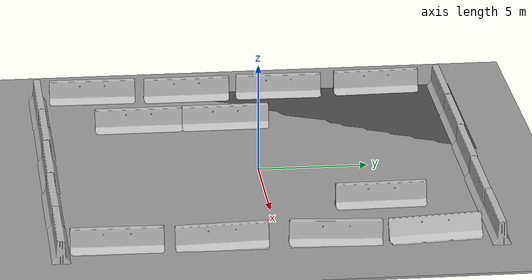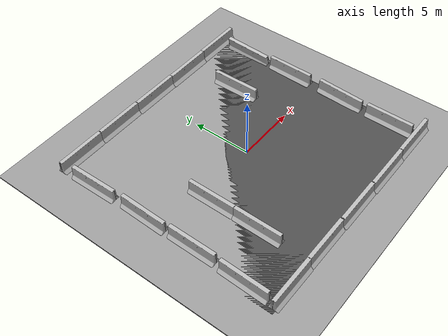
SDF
<sdf version="1.7">
 <world name="default">
  <light name="sun" type="directional">
   <pose>0 0 10 0 -0 0</pose>
   <diffuse>0.8 0.8 0.8 1</diffuse>
   <specular>0.2 0.2 0.2 1</specular>
   <attenuation>
    <range>1000</range>
    <constant>0.9</constant>
    <linear>0.01</linear>
    <quadratic>0.001</quadratic>
   </attenuation>
   <direction>-0.5 0.1 -0.9</direction>
   <spot><inner_angle>0</inner_angle><outer_angle>0</outer_angle><falloff>0</falloff></spot>
  </light>
  <model name="ground_plane">
   <static>1</static>
   <link name="link">
    <collision name="collision">
     <geometry><plane><normal>0 0 1</normal><size>100 100</size></plane></geometry>
     <surface>
      <contact><collide_bitmask>65535</collide_bitmask></contact>
      <friction><ode><mu>100</mu><mu2>50</mu2></ode></friction>
     </surface>
    </collision>
    <visual name="visual">
     <cast_shadows>0</cast_shadows>
     <geometry><plane><normal>0 0 1</normal><size>100 100</size></plane></geometry>
     <material>
      <script><uri>file://media/materials/scripts/gazebo.material</uri><name>Gazebo/Grey</name></script>
     </material>
    </visual>
   </link>
  </model>
  <gravity>0 0 -9.8</gravity>
  <magnetic_field>6e-06 2.3e-05 -4.2e-05</magnetic_field>
  <atmosphere type="adiabatic"/>
  <physics type="ode">
   <max_step_size>0.001</max_step_size>
   <real_time_factor>1</real_time_factor>
   <real_time_update_rate>1000</real_time_update_rate>
  </physics>
  <scene><ambient>0.4 0.4 0.4 1</ambient><background>0.7 0.7 0.7 1</background><shadows>1</shadows></scene>
  <spherical_coordinates>
   <surface_model>EARTH_WGS84</surface_model>
   <latitude_deg>0</latitude_deg>
   <longitude_deg>0</longitude_deg>
   <elevation>0</elevation>
   <heading_deg>0</heading_deg>
  </spherical_coordinates>
  <model name="ground_plane_0">
   <static>1</static>
   <link name="link">
    <collision name="collision">
     <geometry><plane><normal>0 0 1</normal><size>100 100</size></plane></geometry>
     <surface>
      <contact><collide_bitmask>65535</collide_bitmask></contact>
      <friction><ode><mu>100</mu><mu2>50</mu2></ode></friction>
     </surface>
    </collision>
    <visual name="visual">
     <cast_shadows>0</cast_shadows>
     <geometry><plane><normal>0 0 1</normal><size>100 100</size></plane></geometry>
     <material>
      <script><uri>file://media/materials/scripts/gazebo.material</uri><name>Gazebo/Grey</name></script>
     </material>
    </visual>
   </link>
   <pose>-2.03135 -1.11206 0 0 -0 0</pose>
  </model>
  <model name="jersey_barrier">
   <static>1</static>
   <link name="link">
    <visual name="visual">
     <geometry><mesh><uri>model://jersey_barrier/meshes/jersey_barrier.dae</uri></mesh></geometry>
    </visual>
    <collision name="upright">
     <pose>0 0 0.5715 0 -0 0</pose>
     <geometry><box><size>4.06542 0.3063 1.143</size></box></geometry>
    </collision>
    <collision name="base">
     <pose>0 0 0.032258 0 -0 0</pose>
     <geometry><box><size>4.06542 0.8107 0.064516</size></box></geometry>
    </collision>
    <collision name="base2">
     <pose>0 0 0.1 0 -0 0</pose>
     <geometry><box><size>4.06542 0.65 0.1</size></box></geometry>
    </collision>
    <collision name="base3">
     <pose>0 0 0.2 0 -0 0</pose>
     <geometry><box><size>4.06542 0.5 0.1</size></box></geometry>
    </collision>
    <collision name="left-angle">
     <pose>0 -0.224 0.2401 0.9 -0 0</pose>
     <geometry><box><size>4.06542 0.5 0.064516</size></box></geometry>
    </collision>
    <collision name="right-angle">
     <pose>0 0.224 0.2401 -0.9 0 0</pose>
     <geometry><box><size>4.06542 0.5 0.064516</size></box></geometry>
    </collision>
   </link>
   <pose>-5.45633 -5.03881 0 0 -0 1.56743</pose>
  </model>
  <model name="jersey_barrier_0">
   <static>1</static>
   <link name="link">
    <visual name="visual">
     <geometry><mesh><uri>model://jersey_barrier/meshes/jersey_barrier.dae</uri></mesh></geometry>
    </visual>
    <collision name="upright">
     <pose>0 0 0.5715 0 -0 0</pose>
     <geometry><box><size>4.06542 0.3063 1.143</size></box></geometry>
    </collision>
    <collision name="base">
     <pose>0 0 0.032258 0 -0 0</pose>
     <geometry><box><size>4.06542 0.8107 0.064516</size></box></geometry>
    </collision>
    <collision name="base2">
     <pose>0 0 0.1 0 -0 0</pose>
     <geometry><box><size>4.06542 0.65 0.1</size></box></geometry>
    </collision>
    <collision name="base3">
     <pose>0 0 0.2 0 -0 0</pose>
     <geometry><box><size>4.06542 0.5 0.1</size></box></geometry>
    </collision>
    <collision name="left-angle">
     <pose>0 -0.224 0.2401 0.9 -0 0</pose>
     <geometry><box><size>4.06542 0.5 0.064516</size></box></geometry>
    </collision>
    <collision name="right-angle">
     <pose>0 0.224 0.2401 -0.9 0 0</pose>
     <geometry><box><size>4.06542 0.5 0.064516</size></box></geometry>
    </collision>
   </link>
   <pose>-5.45071 -0.981356 0 0 -0 1.57305</pose>
  </model>
  <model name="jersey_barrier_1">
   <static>1</static>
   <link name="link">
    <visual name="visual">
     <geometry><mesh><uri>model://jersey_barrier/meshes/jersey_barrier.dae</uri></mesh></geometry>
    </visual>
    <collision name="upright">
     <pose>0 0 0.5715 0 -0 0</pose>
     <geometry><box><size>4.06542 0.3063 1.143</size></box></geometry>
    </collision>
    <collision name="base">
     <pose>0 0 0.032258 0 -0 0</pose>
     <geometry><box><size>4.06542 0.8107 0.064516</size></box></geometry>
    </collision>
    <collision name="base2">
     <pose>0 0 0.1 0 -0 0</pose>
     <geometry><box><size>4.06542 0.65 0.1</size></box></geometry>
    </collision>
    <collision name="base3">
     <pose>0 0 0.2 0 -0 0</pose>
     <geometry><box><size>4.06542 0.5 0.1</size></box></geometry>
    </collision>
    <collision name="left-angle">
     <pose>0 -0.224 0.2401 0.9 -0 0</pose>
     <geometry><box><size>4.06542 0.5 0.064516</size></box></geometry>
    </collision>
    <collision name="right-angle">
     <pose>0 0.224 0.2401 -0.9 0 0</pose>
     <geometry><box><size>4.06542 0.5 0.064516</size></box></geometry>
    </collision>
   </link>
   <pose>5.06129 4.93659 0 0 0 -1.55743</pose>
  </model>
  <model name="asphalt_plane">
   <static>1</static>
   <link name="link">
    <collision name="collision"><geometry><box><size>20 20 0.1</size></box></geometry></collision>
    <visual name="visual">
     <cast_shadows>0</cast_shadows>
     <geometry><box><size>20 20 0.1</size></box></geometry>
     <material>
      <script>
       <uri>model://asphalt_plane/materials/scripts</uri>
       <uri>model://asphalt_plane/materials/textures</uri>
       <name>vrc/asphalt</name>
      </script>
     </material>
    </visual>
   </link>
   <pose>-0.201738 0.289887 0 0 -0 0</pose>
  </model>
  <model name="jersey_barrier_2">
   <static>1</static>
   <link name="link">
    <visual name="visual">
     <geometry><mesh><uri>model://jersey_barrier/meshes/jersey_barrier.dae</uri></mesh></geometry>
    </visual>
    <collision name="upright">
     <pose>0 0 0.5715 0 -0 0</pose>
     <geometry><box><size>4.06542 0.3063 1.143</size></box></geometry>
    </collision>
    <collision name="base">
     <pose>0 0 0.032258 0 -0 0</pose>
     <geometry><box><size>4.06542 0.8107 0.064516</size></box></geometry>
    </collision>
    <collision name="base2">
     <pose>0 0 0.1 0 -0 0</pose>
     <geometry><box><size>4.06542 0.65 0.1</size></box></geometry>
    </collision>
    <collision name="base3">
     <pose>0 0 0.2 0 -0 0</pose>
     <geometry><box><size>4.06542 0.5 0.1</size></box></geometry>
    </collision>
    <collision name="left-angle">
     <pose>0 -0.224 0.2401 0.9 -0 0</pose>
     <geometry><box><size>4.06542 0.5 0.064516</size></box></geometry>
    </collision>
    <collision name="right-angle">
     <pose>0 0.224 0.2401 -0.9 0 0</pose>
     <geometry><box><size>4.06542 0.5 0.064516</size></box></geometry>
    </collision>
   </link>
   <pose>-7.91902 9.63171 0 0 -0 0</pose>
  </model>
  <model name="jersey_barrier_3">
   <static>1</static>
   <link name="link">
    <visual name="visual">
     <geometry><mesh><uri>model://jersey_barrier/meshes/jersey_barrier.dae</uri></mesh></geometry>
    </visual>
    <collision name="upright">
     <pose>0 0 0.5715 0 -0 0</pose>
     <geometry><box><size>4.06542 0.3063 1.143</size></box></geometry>
    </collision>
    <collision name="base">
     <pose>0 0 0.032258 0 -0 0</pose>
     <geometry><box><size>4.06542 0.8107 0.064516</size></box></geometry>
    </collision>
    <collision name="base2">
     <pose>0 0 0.1 0 -0 0</pose>
     <geometry><box><size>4.06542 0.65 0.1</size></box></geometry>
    </collision>
    <collision name="base3">
     <pose>0 0 0.2 0 -0 0</pose>
     <geometry><box><size>4.06542 0.5 0.1</size></box></geometry>
    </collision>
    <collision name="left-angle">
     <pose>0 -0.224 0.2401 0.9 -0 0</pose>
     <geometry><box><size>4.06542 0.5 0.064516</size></box></geometry>
    </collision>
    <collision name="right-angle">
     <pose>0 0.224 0.2401 -0.9 0 0</pose>
     <geometry><box><size>4.06542 0.5 0.064516</size></box></geometry>
    </collision>
   </link>
   <pose>-3.83808 9.62123 0 0 -0 0</pose>
  </model>
  <model name="jersey_barrier_4">
   <static>1</static>
   <link name="link">
    <visual name="visual">
     <geometry><mesh><uri>model://jersey_barrier/meshes/jersey_barrier.dae</uri></mesh></geometry>
    </visual>
    <collision name="upright">
     <pose>0 0 0.5715 0 -0 0</pose>
     <geometry><box><size>4.06542 0.3063 1.143</size></box></geometry>
    </collision>
    <collision name="base">
     <pose>0 0 0.032258 0 -0 0</pose>
     <geometry><box><size>4.06542 0.8107 0.064516</size></box></geometry>
    </collision>
    <collision name="base2">
     <pose>0 0 0.1 0 -0 0</pose>
     <geometry><box><size>4.06542 0.65 0.1</size></box></geometry>
    </collision>
    <collision name="base3">
     <pose>0 0 0.2 0 -0 0</pose>
     <geometry><box><size>4.06542 0.5 0.1</size></box></geometry>
    </collision>
    <collision name="left-angle">
     <pose>0 -0.224 0.2401 0.9 -0 0</pose>
     <geometry><box><size>4.06542 0.5 0.064516</size></box></geometry>
    </collision>
    <collision name="right-angle">
     <pose>0 0.224 0.2401 -0.9 0 0</pose>
     <geometry><box><size>4.06542 0.5 0.064516</size></box></geometry>
    </collision>
   </link>
   <pose>0.242921 9.57793 0 0 -0 0</pose>
  </model>
  <model name="jersey_barrier_5">
   <static>1</static>
   <link name="link">
    <visual name="visual">
     <geometry><mesh><uri>model://jersey_barrier/meshes/jersey_barrier.dae</uri></mesh></geometry>
    </visual>
    <collision name="upright">
     <pose>0 0 0.5715 0 -0 0</pose>
     <geometry><box><size>4.06542 0.3063 1.143</size></box></geometry>
    </collision>
    <collision name="base">
     <pose>0 0 0.032258 0 -0 0</pose>
     <geometry><box><size>4.06542 0.8107 0.064516</size></box></geometry>
    </collision>
    <collision name="base2">
     <pose>0 0 0.1 0 -0 0</pose>
     <geometry><box><size>4.06542 0.65 0.1</size></box></geometry>
    </collision>
    <collision name="base3">
     <pose>0 0 0.2 0 -0 0</pose>
     <geometry><box><size>4.06542 0.5 0.1</size></box></geometry>
    </collision>
    <collision name="left-angle">
     <pose>0 -0.224 0.2401 0.9 -0 0</pose>
     <geometry><box><size>4.06542 0.5 0.064516</size></box></geometry>
    </collision>
    <collision name="right-angle">
     <pose>0 0.224 0.2401 -0.9 0 0</pose>
     <geometry><box><size>4.06542 0.5 0.064516</size></box></geometry>
    </collision>
   </link>
   <pose>4.29104 9.53452 0 0 -0 0</pose>
  </model>
  <model name="jersey_barrier_6">
   <static>1</static>
   <link name="link">
    <visual name="visual">
     <geometry><mesh><uri>model://jersey_barrier/meshes/jersey_barrier.dae</uri></mesh></geometry>
    </visual>
    <collision name="upright">
     <pose>0 0 0.5715 0 -0 0</pose>
     <geometry><box><size>4.06542 0.3063 1.143</size></box></geometry>
    </collision>
    <collision name="base">
     <pose>0 0 0.032258 0 -0 0</pose>
     <geometry><box><size>4.06542 0.8107 0.064516</size></box></geometry>
    </collision>
    <collision name="base2">
     <pose>0 0 0.1 0 -0 0</pose>
     <geometry><box><size>4.06542 0.65 0.1</size></box></geometry>
    </collision>
    <collision name="base3">
     <pose>0 0 0.2 0 -0 0</pose>
     <geometry><box><size>4.06542 0.5 0.1</size></box></geometry>
    </collision>
    <collision name="left-angle">
     <pose>0 -0.224 0.2401 0.9 -0 0</pose>
     <geometry><box><size>4.06542 0.5 0.064516</size></box></geometry>
    </collision>
    <collision name="right-angle">
     <pose>0 0.224 0.2401 -0.9 0 0</pose>
     <geometry><box><size>4.06542 0.5 0.064516</size></box></geometry>
    </collision>
   </link>
   <pose>8.27347 9.55728 0 0 -0 0</pose>
  </model>
  <model name="jersey_barrier_7">
   <static>1</static>
   <link name="link">
    <visual name="visual">
     <geometry><mesh><uri>model://jersey_barrier/meshes/jersey_barrier.dae</uri></mesh></geometry>
    </visual>
    <collision name="upright">
     <pose>0 0 0.5715 0 -0 0</pose>
     <geometry><box><size>4.06542 0.3063 1.143</size></box></geometry>
    </collision>
    <collision name="base">
     <pose>0 0 0.032258 0 -0 0</pose>
     <geometry><box><size>4.06542 0.8107 0.064516</size></box></geometry>
    </collision>
    <collision name="base2">
     <pose>0 0 0.1 0 -0 0</pose>
     <geometry><box><size>4.06542 0.65 0.1</size></box></geometry>
    </collision>
    <collision name="base3">
     <pose>0 0 0.2 0 -0 0</pose>
     <geometry><box><size>4.06542 0.5 0.1</size></box></geometry>
    </collision>
    <collision name="left-angle">
     <pose>0 -0.224 0.2401 0.9 -0 0</pose>
     <geometry><box><size>4.06542 0.5 0.064516</size></box></geometry>
    </collision>
    <collision name="right-angle">
     <pose>0 0.224 0.2401 -0.9 0 0</pose>
     <geometry><box><size>4.06542 0.5 0.064516</size></box></geometry>
    </collision>
   </link>
   <pose>-7.89833 -9.55121 0 0 -0 0</pose>
  </model>
  <model name="jersey_barrier_8">
   <static>1</static>
   <link name="link">
    <visual name="visual">
     <geometry><mesh><uri>model://jersey_barrier/meshes/jersey_barrier.dae</uri></mesh></geometry>
    </visual>
    <collision name="upright">
     <pose>0 0 0.5715 0 -0 0</pose>
     <geometry><box><size>4.06542 0.3063 1.143</size></box></geometry>
    </collision>
    <collision name="base">
     <pose>0 0 0.032258 0 -0 0</pose>
     <geometry><box><size>4.06542 0.8107 0.064516</size></box></geometry>
    </collision>
    <collision name="base2">
     <pose>0 0 0.1 0 -0 0</pose>
     <geometry><box><size>4.06542 0.65 0.1</size></box></geometry>
    </collision>
    <collision name="base3">
     <pose>0 0 0.2 0 -0 0</pose>
     <geometry><box><size>4.06542 0.5 0.1</size></box></geometry>
    </collision>
    <collision name="left-angle">
     <pose>0 -0.224 0.2401 0.9 -0 0</pose>
     <geometry><box><size>4.06542 0.5 0.064516</size></box></geometry>
    </collision>
    <collision name="right-angle">
     <pose>0 0.224 0.2401 -0.9 0 0</pose>
     <geometry><box><size>4.06542 0.5 0.064516</size></box></geometry>
    </collision>
   </link>
   <pose>-3.8518 -9.52867 0 0 -0 0</pose>
  </model>
  <model name="jersey_barrier_9">
   <static>1</static>
   <link name="link">
    <visual name="visual">
     <geometry><mesh><uri>model://jersey_barrier/meshes/jersey_barrier.dae</uri></mesh></geometry>
    </visual>
    <collision name="upright">
     <pose>0 0 0.5715 0 -0 0</pose>
     <geometry><box><size>4.06542 0.3063 1.143</size></box></geometry>
    </collision>
    <collision name="base">
     <pose>0 0 0.032258 0 -0 0</pose>
     <geometry><box><size>4.06542 0.8107 0.064516</size></box></geometry>
    </collision>
    <collision name="base2">
     <pose>0 0 0.1 0 -0 0</pose>
     <geometry><box><size>4.06542 0.65 0.1</size></box></geometry>
    </collision>
    <collision name="base3">
     <pose>0 0 0.2 0 -0 0</pose>
     <geometry><box><size>4.06542 0.5 0.1</size></box></geometry>
    </collision>
    <collision name="left-angle">
     <pose>0 -0.224 0.2401 0.9 -0 0</pose>
     <geometry><box><size>4.06542 0.5 0.064516</size></box></geometry>
    </collision>
    <collision name="right-angle">
     <pose>0 0.224 0.2401 -0.9 0 0</pose>
     <geometry><box><size>4.06542 0.5 0.064516</size></box></geometry>
    </collision>
   </link>
   <pose>0.260404 -9.57206 0 0 -0 0</pose>
  </model>
  <model name="jersey_barrier_10">
   <static>1</static>
   <link name="link">
    <visual name="visual">
     <geometry><mesh><uri>model://jersey_barrier/meshes/jersey_barrier.dae</uri></mesh></geometry>
    </visual>
    <collision name="upright">
     <pose>0 0 0.5715 0 -0 0</pose>
     <geometry><box><size>4.06542 0.3063 1.143</size></box></geometry>
    </collision>
    <collision name="base">
     <pose>0 0 0.032258 0 -0 0</pose>
     <geometry><box><size>4.06542 0.8107 0.064516</size></box></geometry>
    </collision>
    <collision name="base2">
     <pose>0 0 0.1 0 -0 0</pose>
     <geometry><box><size>4.06542 0.65 0.1</size></box></geometry>
    </collision>
    <collision name="base3">
     <pose>0 0 0.2 0 -0 0</pose>
     <geometry><box><size>4.06542 0.5 0.1</size></box></geometry>
    </collision>
    <collision name="left-angle">
     <pose>0 -0.224 0.2401 0.9 -0 0</pose>
     <geometry><box><size>4.06542 0.5 0.064516</size></box></geometry>
    </collision>
    <collision name="right-angle">
     <pose>0 0.224 0.2401 -0.9 0 0</pose>
     <geometry><box><size>4.06542 0.5 0.064516</size></box></geometry>
    </collision>
   </link>
   <pose>4.33969 -9.61551 0 0 -0 0</pose>
  </model>
  <model name="jersey_barrier_11">
   <static>1</static>
   <link name="link">
    <visual name="visual">
     <geometry><mesh><uri>model://jersey_barrier/meshes/jersey_barrier.dae</uri></mesh></geometry>
    </visual>
    <collision name="upright">
     <pose>0 0 0.5715 0 -0 0</pose>
     <geometry><box><size>4.06542 0.3063 1.143</size></box></geometry>
    </collision>
    <collision name="base">
     <pose>0 0 0.032258 0 -0 0</pose>
     <geometry><box><size>4.06542 0.8107 0.064516</size></box></geometry>
    </collision>
    <collision name="base2">
     <pose>0 0 0.1 0 -0 0</pose>
     <geometry><box><size>4.06542 0.65 0.1</size></box></geometry>
    </collision>
    <collision name="base3">
     <pose>0 0 0.2 0 -0 0</pose>
     <geometry><box><size>4.06542 0.5 0.1</size></box></geometry>
    </collision>
    <collision name="left-angle">
     <pose>0 -0.224 0.2401 0.9 -0 0</pose>
     <geometry><box><size>4.06542 0.5 0.064516</size></box></geometry>
    </collision>
    <collision name="right-angle">
     <pose>0 0.224 0.2401 -0.9 0 0</pose>
     <geometry><box><size>4.06542 0.5 0.064516</size></box></geometry>
    </collision>
   </link>
   <pose>8.38622 -9.59291 0 0 -0 0</pose>
  </model>
  <model name="jersey_barrier_12">
   <static>1</static>
   <link name="link">
    <visual name="visual">
     <geometry><mesh><uri>model://jersey_barrier/meshes/jersey_barrier.dae</uri></mesh></geometry>
    </visual>
    <collision name="upright">
     <pose>0 0 0.5715 0 -0 0</pose>
     <geometry><box><size>4.06542 0.3063 1.143</size></box></geometry>
    </collision>
    <collision name="base">
     <pose>0 0 0.032258 0 -0 0</pose>
     <geometry><box><size>4.06542 0.8107 0.064516</size></box></geometry>
    </collision>
    <collision name="base2">
     <pose>0 0 0.1 0 -0 0</pose>
     <geometry><box><size>4.06542 0.65 0.1</size></box></geometry>
    </collision>
    <collision name="base3">
     <pose>0 0 0.2 0 -0 0</pose>
     <geometry><box><size>4.06542 0.5 0.1</size></box></geometry>
    </collision>
    <collision name="left-angle">
     <pose>0 -0.224 0.2401 0.9 -0 0</pose>
     <geometry><box><size>4.06542 0.5 0.064516</size></box></geometry>
    </collision>
    <collision name="right-angle">
     <pose>0 0.224 0.2401 -0.9 0 0</pose>
     <geometry><box><size>4.06542 0.5 0.064516</size></box></geometry>
    </collision>
   </link>
   <pose>-9.53469 6.67744 0 0 -0 1.58963</pose>
  </model>
  <model name="jersey_barrier_13">
   <static>1</static>
   <link name="link">
    <visual name="visual">
     <geometry><mesh><uri>model://jersey_barrier/meshes/jersey_barrier.dae</uri></mesh></geometry>
    </visual>
    <collision name="upright">
     <pose>0 0 0.5715 0 -0 0</pose>
     <geometry><box><size>4.06542 0.3063 1.143</size></box></geometry>
    </collision>
    <collision name="base">
     <pose>0 0 0.032258 0 -0 0</pose>
     <geometry><box><size>4.06542 0.8107 0.064516</size></box></geometry>
    </collision>
    <collision name="base2">
     <pose>0 0 0.1 0 -0 0</pose>
     <geometry><box><size>4.06542 0.65 0.1</size></box></geometry>
    </collision>
    <collision name="base3">
     <pose>0 0 0.2 0 -0 0</pose>
     <geometry><box><size>4.06542 0.5 0.1</size></box></geometry>
    </collision>
    <collision name="left-angle">
     <pose>0 -0.224 0.2401 0.9 -0 0</pose>
     <geometry><box><size>4.06542 0.5 0.064516</size></box></geometry>
    </collision>
    <collision name="right-angle">
     <pose>0 0.224 0.2401 -0.9 0 0</pose>
     <geometry><box><size>4.06542 0.5 0.064516</size></box></geometry>
    </collision>
   </link>
   <pose>-9.41312 1.96129 0 0 0 -1.59214</pose>
  </model>
  <model name="jersey_barrier_14">
   <static>1</static>
   <link name="link">
    <visual name="visual">
     <geometry><mesh><uri>model://jersey_barrier/meshes/jersey_barrier.dae</uri></mesh></geometry>
    </visual>
    <collision name="upright">
     <pose>0 0 0.5715 0 -0 0</pose>
     <geometry><box><size>4.06542 0.3063 1.143</size></box></geometry>
    </collision>
    <collision name="base">
     <pose>0 0 0.032258 0 -0 0</pose>
     <geometry><box><size>4.06542 0.8107 0.064516</size></box></geometry>
    </collision>
    <collision name="base2">
     <pose>0 0 0.1 0 -0 0</pose>
     <geometry><box><size>4.06542 0.65 0.1</size></box></geometry>
    </collision>
    <collision name="base3">
     <pose>0 0 0.2 0 -0 0</pose>
     <geometry><box><size>4.06542 0.5 0.1</size></box></geometry>
    </collision>
    <collision name="left-angle">
     <pose>0 -0.224 0.2401 0.9 -0 0</pose>
     <geometry><box><size>4.06542 0.5 0.064516</size></box></geometry>
    </collision>
    <collision name="right-angle">
     <pose>0 0.224 0.2401 -0.9 0 0</pose>
     <geometry><box><size>4.06542 0.5 0.064516</size></box></geometry>
    </collision>
   </link>
   <pose>-9.37102 -2.45162 0 0 0 -1.57306</pose>
  </model>
  <model name="jersey_barrier_15">
   <static>1</static>
   <link name="link">
    <visual name="visual">
     <geometry><mesh><uri>model://jersey_barrier/meshes/jersey_barrier.dae</uri></mesh></geometry>
    </visual>
    <collision name="upright">
     <pose>0 0 0.5715 0 -0 0</pose>
     <geometry><box><size>4.06542 0.3063 1.143</size></box></geometry>
    </collision>
    <collision name="base">
     <pose>0 0 0.032258 0 -0 0</pose>
     <geometry><box><size>4.06542 0.8107 0.064516</size></box></geometry>
    </collision>
    <collision name="base2">
     <pose>0 0 0.1 0 -0 0</pose>
     <geometry><box><size>4.06542 0.65 0.1</size></box></geometry>
    </collision>
    <collision name="base3">
     <pose>0 0 0.2 0 -0 0</pose>
     <geometry><box><size>4.06542 0.5 0.1</size></box></geometry>
    </collision>
    <collision name="left-angle">
     <pose>0 -0.224 0.2401 0.9 -0 0</pose>
     <geometry><box><size>4.06542 0.5 0.064516</size></box></geometry>
    </collision>
    <collision name="right-angle">
     <pose>0 0.224 0.2401 -0.9 0 0</pose>
     <geometry><box><size>4.06542 0.5 0.064516</size></box></geometry>
    </collision>
   </link>
   <pose>-9.5069 -6.93903 0 0 0 -1.59352</pose>
  </model>
  <model name="jersey_barrier_16">
   <static>1</static>
   <link name="link">
    <visual name="visual">
     <geometry><mesh><uri>model://jersey_barrier/meshes/jersey_barrier.dae</uri></mesh></geometry>
    </visual>
    <collision name="upright">
     <pose>0 0 0.5715 0 -0 0</pose>
     <geometry><box><size>4.06542 0.3063 1.143</size></box></geometry>
    </collision>
    <collision name="base">
     <pose>0 0 0.032258 0 -0 0</pose>
     <geometry><box><size>4.06542 0.8107 0.064516</size></box></geometry>
    </collision>
    <collision name="base2">
     <pose>0 0 0.1 0 -0 0</pose>
     <geometry><box><size>4.06542 0.65 0.1</size></box></geometry>
    </collision>
    <collision name="base3">
     <pose>0 0 0.2 0 -0 0</pose>
     <geometry><box><size>4.06542 0.5 0.1</size></box></geometry>
    </collision>
    <collision name="left-angle">
     <pose>0 -0.224 0.2401 0.9 -0 0</pose>
     <geometry><box><size>4.06542 0.5 0.064516</size></box></geometry>
    </collision>
    <collision name="right-angle">
     <pose>0 0.224 0.2401 -0.9 0 0</pose>
     <geometry><box><size>4.06542 0.5 0.064516</size></box></geometry>
    </collision>
   </link>
   <pose>9.35387 6.78401 0 0.250126 0.039362 -1.57255</pose>
  </model>
  <model name="jersey_barrier_17">
   <static>1</static>
   <link name="link">
    <visual name="visual">
     <geometry><mesh><uri>model://jersey_barrier/meshes/jersey_barrier.dae</uri></mesh></geometry>
    </visual>
    <collision name="upright">
     <pose>0 0 0.5715 0 -0 0</pose>
     <geometry><box><size>4.06542 0.3063 1.143</size></box></geometry>
    </collision>
    <collision name="base">
     <pose>0 0 0.032258 0 -0 0</pose>
     <geometry><box><size>4.06542 0.8107 0.064516</size></box></geometry>
    </collision>
    <collision name="base2">
     <pose>0 0 0.1 0 -0 0</pose>
     <geometry><box><size>4.06542 0.65 0.1</size></box></geometry>
    </collision>
    <collision name="base3">
     <pose>0 0 0.2 0 -0 0</pose>
     <geometry><box><size>4.06542 0.5 0.1</size></box></geometry>
    </collision>
    <collision name="left-angle">
     <pose>0 -0.224 0.2401 0.9 -0 0</pose>
     <geometry><box><size>4.06542 0.5 0.064516</size></box></geometry>
    </collision>
    <collision name="right-angle">
     <pose>0 0.224 0.2401 -0.9 0 0</pose>
     <geometry><box><size>4.06542 0.5 0.064516</size></box></geometry>
    </collision>
   </link>
   <pose>9.25741 2.38491 0 0.006865 -0.022667 -1.60358</pose>
  </model>
  <model name="jersey_barrier_18">
   <static>1</static>
   <link name="link">
    <visual name="visual">
     <geometry><mesh><uri>model://jersey_barrier/meshes/jersey_barrier.dae</uri></mesh></geometry>
    </visual>
    <collision name="upright">
     <pose>0 0 0.5715 0 -0 0</pose>
     <geometry><box><size>4.06542 0.3063 1.143</size></box></geometry>
    </collision>
    <collision name="base">
     <pose>0 0 0.032258 0 -0 0</pose>
     <geometry><box><size>4.06542 0.8107 0.064516</size></box></geometry>
    </collision>
    <collision name="base2">
     <pose>0 0 0.1 0 -0 0</pose>
     <geometry><box><size>4.06542 0.65 0.1</size></box></geometry>
    </collision>
    <collision name="base3">
     <pose>0 0 0.2 0 -0 0</pose>
     <geometry><box><size>4.06542 0.5 0.1</size></box></geometry>
    </collision>
    <collision name="left-angle">
     <pose>0 -0.224 0.2401 0.9 -0 0</pose>
     <geometry><box><size>4.06542 0.5 0.064516</size></box></geometry>
    </collision>
    <collision name="right-angle">
     <pose>0 0.224 0.2401 -0.9 0 0</pose>
     <geometry><box><size>4.06542 0.5 0.064516</size></box></geometry>
    </collision>
   </link>
   <pose>9.19691 -2.54275 0 -0.002356 -0.031609 1.54589</pose>
  </model>
  <model name="jersey_barrier_19">
   <static>1</static>
   <link name="link">
    <visual name="visual">
     <geometry><mesh><uri>model://jersey_barrier/meshes/jersey_barrier.dae</uri></mesh></geometry>
    </visual>
    <collision name="upright">
     <pose>0 0 0.5715 0 -0 0</pose>
     <geometry><box><size>4.06542 0.3063 1.143</size></box></geometry>
    </collision>
    <collision name="base">
     <pose>0 0 0.032258 0 -0 0</pose>
     <geometry><box><size>4.06542 0.8107 0.064516</size></box></geometry>
    </collision>
    <collision name="base2">
     <pose>0 0 0.1 0 -0 0</pose>
     <geometry><box><size>4.06542 0.65 0.1</size></box></geometry>
    </collision>
    <collision name="base3">
     <pose>0 0 0.2 0 -0 0</pose>
     <geometry><box><size>4.06542 0.5 0.1</size></box></geometry>
    </collision>
    <collision name="left-angle">
     <pose>0 -0.224 0.2401 0.9 -0 0</pose>
     <geometry><box><size>4.06542 0.5 0.064516</size></box></geometry>
    </collision>
    <collision name="right-angle">
     <pose>0 0.224 0.2401 -0.9 0 0</pose>
     <geometry><box><size>4.06542 0.5 0.064516</size></box></geometry>
    </collision>
   </link>
   <pose>9.12913 -7.11155 0 -8.3e-05 0.006833 1.55871</pose>
  </model>
 </world>
</sdf>
